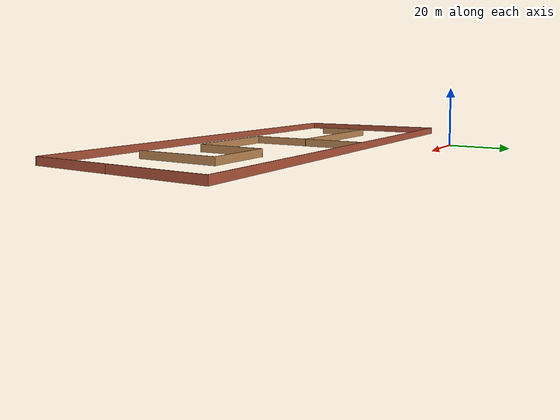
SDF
<?xml version='1.0'?>
<sdf version='1.7'>
  <model name='random'>
    <pose>30.7351 -40.0624 0 0 -0 0</pose>
    <link name='Wall_10'>
      <collision name='Wall_10_Collision'>
        <geometry>
          <box>
            <size>148 0.15 2.5</size>
          </box>
        </geometry>
        <pose>0 0 1.25 0 -0 0</pose>
      </collision>
      <visual name='Wall_10_Visual'>
        <pose>0 0 1.25 0 -0 0</pose>
        <geometry>
          <box>
            <size>148 0.15 2.5</size>
          </box>
        </geometry>
        <material>
          <script>
            <uri>file://media/materials/scripts/gazebo.material</uri>
            <name>Gazebo/Bricks</name>
          </script>
          <ambient>1 1 1 1</ambient>
        </material>
        <meta>
          <layer>0</layer>
        </meta>
      </visual>
      <pose>-4e-06 19.2126 0 0 -0 0</pose>
    </link>
    <link name='Wall_11'>
      <collision name='Wall_11_Collision'>
        <geometry>
          <box>
            <size>32.25 0.15 2.5</size>
          </box>
        </geometry>
        <pose>0 0 1.25 0 -0 0</pose>
      </collision>
      <visual name='Wall_11_Visual'>
        <pose>0 0 1.25 0 -0 0</pose>
        <geometry>
          <box>
            <size>32.25 0.15 2.5</size>
          </box>
        </geometry>
        <material>
          <script>
            <uri>file://media/materials/scripts/gazebo.material</uri>
            <name>Gazebo/Bricks</name>
          </script>
          <ambient>1 1 1 1</ambient>
        </material>
        <meta>
          <layer>0</layer>
        </meta>
      </visual>
      <pose>73.925 3.16256 0 0 -0 -1.5708</pose>
    </link>
    <link name='Wall_12'>
      <collision name='Wall_12_Collision'>
        <geometry>
          <box>
            <size>27.25 0.15 2.5</size>
          </box>
        </geometry>
        <pose>0 0 1.25 0 -0 0</pose>
      </collision>
      <visual name='Wall_12_Visual'>
        <pose>0 0 1.25 0 -0 0</pose>
        <geometry>
          <box>
            <size>27.25 0.15 2.5</size>
          </box>
        </geometry>
        <material>
          <script>
            <uri>file://media/materials/scripts/gazebo.material</uri>
            <name>Gazebo/Bricks</name>
          </script>
          <ambient>1 1 1 1</ambient>
        </material>
        <meta>
          <layer>0</layer>
        </meta>
      </visual>
      <pose>73.925 -26.4374 0 0 -0 -1.5708</pose>
    </link>
    <link name='Wall_13'>
      <collision name='Wall_13_Collision'>
        <geometry>
          <box>
            <size>147.75 0.15 2.5</size>
          </box>
        </geometry>
        <pose>0 0 1.25 0 -0 0</pose>
      </collision>
      <visual name='Wall_13_Visual'>
        <pose>0 0 1.25 0 -0 0</pose>
        <geometry>
          <box>
            <size>147.75 0.15 2.5</size>
          </box>
        </geometry>
        <material>
          <script>
            <uri>file://media/materials/scripts/gazebo.material</uri>
            <name>Gazebo/Bricks</name>
          </script>
          <ambient>1 1 1 1</ambient>
        </material>
        <meta>
          <layer>0</layer>
        </meta>
      </visual>
      <pose>0.124996 -39.9874 0 0 -0 3.14159</pose>
    </link>
    <link name='Wall_14'>
      <collision name='Wall_14_Collision'>
        <geometry>
          <box>
            <size>58.75 0.15 2.5</size>
          </box>
        </geometry>
        <pose>0 0 1.25 0 -0 0</pose>
      </collision>
      <visual name='Wall_14_Visual'>
        <pose>0 0 1.25 0 -0 0</pose>
        <geometry>
          <box>
            <size>58.75 0.15 2.5</size>
          </box>
        </geometry>
        <material>
          <script>
            <uri>file://media/materials/scripts/gazebo.material</uri>
            <name>Gazebo/Bricks</name>
          </script>
          <ambient>1 1 1 1</ambient>
        </material>
        <meta>
          <layer>0</layer>
        </meta>
      </visual>
      <pose>-73.675 -10.6874 0 0 -0 1.5708</pose>
    </link>
    <link name='Wall_15'>
      <collision name='Wall_15_Collision'>
        <geometry>
          <box>
            <size>1 0.15 2.5</size>
          </box>
        </geometry>
        <pose>0 0 1.25 0 -0 0</pose>
      </collision>
      <visual name='Wall_15_Visual'>
        <pose>0 0 1.25 0 -0 0</pose>
        <geometry>
          <box>
            <size>1 0.15 2.5</size>
          </box>
        </geometry>
        <material>
          <script>
            <uri>file://media/materials/scripts/gazebo.material</uri>
            <name>Gazebo/Grey</name>
          </script>
          <ambient>1 1 1 1</ambient>
        </material>
        <meta>
          <layer>0</layer>
        </meta>
      </visual>
      <pose>-73.4625 18.9806 0 0 -0 1.0472</pose>
    </link>
    <link name='Wall_17'>
      <collision name='Wall_17_Collision'>
        <geometry>
          <box>
            <size>41.75 0.15 2.5</size>
          </box>
        </geometry>
        <pose>0 0 1.25 0 -0 0</pose>
      </collision>
      <visual name='Wall_17_Visual'>
        <pose>0 0 1.25 0 -0 0</pose>
        <geometry>
          <box>
            <size>41.75 0.15 2.5</size>
          </box>
        </geometry>
        <material>
          <script>
            <uri>file://media/materials/scripts/gazebo.material</uri>
            <name>Gazebo/Wood</name>
          </script>
          <ambient>1 1 1 1</ambient>
        </material>
        <meta>
          <layer>0</layer>
        </meta>
      </visual>
      <pose>-2.93024 -1.7618 0 0 -0 1.5708</pose>
    </link>
    <link name='Wall_21'>
      <collision name='Wall_21_Collision'>
        <geometry>
          <box>
            <size>31.75 0.15 2.5</size>
          </box>
        </geometry>
        <pose>0 0 1.25 0 -0 0</pose>
      </collision>
      <visual name='Wall_21_Visual'>
        <pose>0 0 1.25 0 -0 0</pose>
        <geometry>
          <box>
            <size>31.75 0.15 2.5</size>
          </box>
        </geometry>
        <material>
          <script>
            <uri>file://media/materials/scripts/gazebo.material</uri>
            <name>Gazebo/Wood</name>
          </script>
          <ambient>1 1 1 1</ambient>
        </material>
        <meta>
          <layer>0</layer>
        </meta>
      </visual>
      <pose>12.8698 -22.5618 0 0 -0 0</pose>
    </link>
    <link name='Wall_22'>
      <collision name='Wall_22_Collision'>
        <geometry>
          <box>
            <size>24 0.15 2.5</size>
          </box>
        </geometry>
        <pose>0 0 1.25 0 -0 0</pose>
      </collision>
      <visual name='Wall_22_Visual'>
        <pose>0 0 1.25 0 -0 0</pose>
        <geometry>
          <box>
            <size>24 0.15 2.5</size>
          </box>
        </geometry>
        <material>
          <script>
            <uri>file://media/materials/scripts/gazebo.material</uri>
            <name>Gazebo/Wood</name>
          </script>
          <ambient>1 1 1 1</ambient>
        </material>
        <meta>
          <layer>0</layer>
        </meta>
      </visual>
      <pose>28.6698 -10.6368 0 0 -0 1.5708</pose>
    </link>
    <link name='Wall_23'>
      <collision name='Wall_23_Collision'>
        <geometry>
          <box>
            <size>21.75 0.15 2.5</size>
          </box>
        </geometry>
        <pose>0 0 1.25 0 -0 0</pose>
      </collision>
      <visual name='Wall_23_Visual'>
        <pose>0 0 1.25 0 -0 0</pose>
        <geometry>
          <box>
            <size>21.75 0.15 2.5</size>
          </box>
        </geometry>
        <material>
          <script>
            <uri>file://media/materials/scripts/gazebo.material</uri>
            <name>Gazebo/Wood</name>
          </script>
          <ambient>1 1 1 1</ambient>
        </material>
        <meta>
          <layer>0</layer>
        </meta>
      </visual>
      <pose>39.4698 1.2882 0 0 -0 0</pose>
    </link>
    <link name='Wall_24'>
      <collision name='Wall_24_Collision'>
        <geometry>
          <box>
            <size>28.25 0.15 2.5</size>
          </box>
        </geometry>
        <pose>0 0 1.25 0 -0 0</pose>
      </collision>
      <visual name='Wall_24_Visual'>
        <pose>0 0 1.25 0 -0 0</pose>
        <geometry>
          <box>
            <size>28.25 0.15 2.5</size>
          </box>
        </geometry>
        <material>
          <script>
            <uri>file://media/materials/scripts/gazebo.material</uri>
            <name>Gazebo/Wood</name>
          </script>
          <ambient>1 1 1 1</ambient>
        </material>
        <meta>
          <layer>0</layer>
        </meta>
      </visual>
      <pose>50.2698 -12.7618 0 0 -0 -1.5708</pose>
    </link>
    <link name='Wall_26'>
      <collision name='Wall_26_Collision'>
        <geometry>
          <box>
            <size>47.25 0.15 2.5</size>
          </box>
        </geometry>
        <pose>0 0 1.25 0 -0 0</pose>
      </collision>
      <visual name='Wall_26_Visual'>
        <pose>0 0 1.25 0 -0 0</pose>
        <geometry>
          <box>
            <size>47.25 0.15 2.5</size>
          </box>
        </geometry>
        <material>
          <script>
            <uri>file://media/materials/scripts/gazebo.material</uri>
            <name>Gazebo/Wood</name>
          </script>
          <ambient>1 1 1 1</ambient>
        </material>
        <meta>
          <layer>0</layer>
        </meta>
      </visual>
      <pose>-26.4802 -2.64863 0 0 -0 3.14159</pose>
    </link>
    <link name='Wall_27'>
      <collision name='Wall_27_Collision'>
        <geometry>
          <box>
            <size>19 0.15 2.5</size>
          </box>
        </geometry>
        <pose>0 0 1.25 0 -0 0</pose>
      </collision>
      <visual name='Wall_27_Visual'>
        <pose>0 0 1.25 0 -0 0</pose>
        <geometry>
          <box>
            <size>19 0.15 2.5</size>
          </box>
        </geometry>
        <material>
          <script>
            <uri>file://media/materials/scripts/gazebo.material</uri>
            <name>Gazebo/Wood</name>
          </script>
          <ambient>1 1 1 1</ambient>
        </material>
        <meta>
          <layer>0</layer>
        </meta>
      </visual>
      <pose>-50.0302 -12.0736 0 0 -0 -1.5708</pose>
    </link>
    <static>1</static>
  </model>
</sdf>
